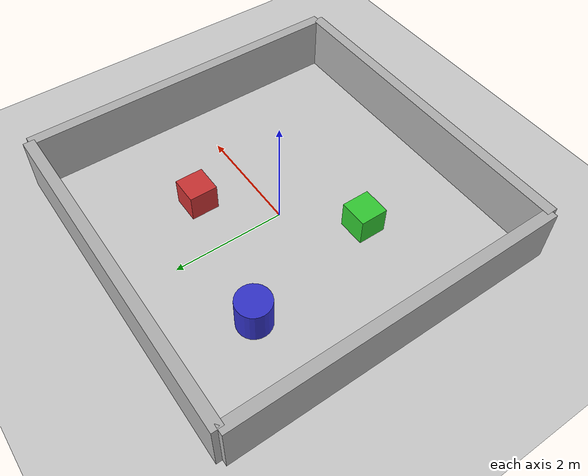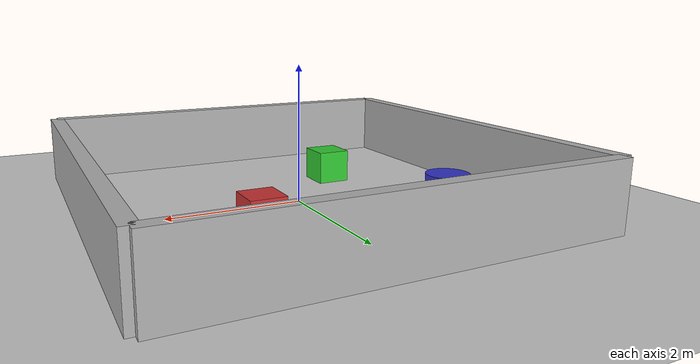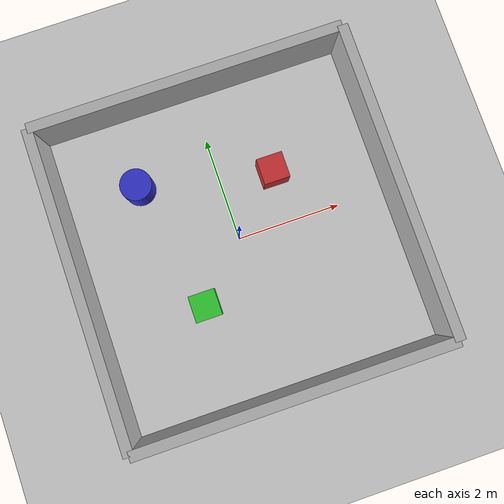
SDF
<?xml version="1.0" ?>
<sdf version="1.8">
  <world name="my_world">

    <!-- Physics Settings -->
    <physics name="1ms" type="ignored">
      <max_step_size>0.001</max_step_size>
      <real_time_factor>1.0</real_time_factor>
      <real_time_update_rate>1000</real_time_update_rate>
    </physics>

    <!-- Plugins -->
    <plugin filename="libignition-gazebo-physics-system.so"
            name="ignition::gazebo::systems::Physics">
    </plugin>

    <plugin filename="libignition-gazebo-user-commands-system.so"
            name="ignition::gazebo::systems::UserCommands">
    </plugin>

    <plugin filename="libignition-gazebo-scene-broadcaster-system.so"
            name="ignition::gazebo::systems::SceneBroadcaster">
    </plugin>

    <plugin filename="libignition-gazebo-sensors-system.so"
            name="ignition::gazebo::systems::Sensors">
      <render_engine>ogre2</render_engine>
    </plugin>

    <!-- Lighting -->
    <light type="directional" name="sun">
      <cast_shadows>true</cast_shadows>
      <pose>0 0 10 0 0 0</pose>
      <diffuse>0.8 0.8 0.8 1</diffuse>
      <specular>0.2 0.2 0.2 1</specular>
      <attenuation>
        <range>1000</range>
        <constant>0.9</constant>
        <linear>0.01</linear>
        <quadratic>0.001</quadratic>
      </attenuation>
      <direction>-0.5 0.1 -0.9</direction>
    </light>

    <!-- Ground Plane -->
    <model name="ground_plane">
      <static>true</static>
      <link name="link">
        <collision name="collision">
          <geometry>
            <plane>
              <normal>0 0 1</normal>
              <size>50 50</size>
            </plane>
          </geometry>
          <surface>
            <friction>
              <ode>
                <mu>100</mu>
                <mu2>50</mu2>
              </ode>
            </friction>
          </surface>
        </collision>
        <visual name="visual">
          <geometry>
            <plane>
              <normal>0 0 1</normal>
              <size>50 50</size>
            </plane>
          </geometry>
          <material>
            <ambient>0.8 0.8 0.8 1</ambient>
            <diffuse>0.8 0.8 0.8 1</diffuse>
            <specular>0.8 0.8 0.8 1</specular>
          </material>
        </visual>
      </link>
    </model>

    <!-- Wall 1 -->
    <model name="wall_1">
      <static>true</static>
      <pose>3 0 0.5 0 0 0</pose>
      <link name="link">
        <collision name="collision">
          <geometry>
            <box>
              <size>0.2 6 1</size>
            </box>
          </geometry>
        </collision>
        <visual name="visual">
          <geometry>
            <box>
              <size>0.2 6 1</size>
            </box>
          </geometry>
          <material>
            <ambient>0.5 0.5 0.5 1</ambient>
            <diffuse>0.7 0.7 0.7 1</diffuse>
          </material>
        </visual>
      </link>
    </model>

    <!-- Wall 2 -->
    <model name="wall_2">
      <static>true</static>
      <pose>-3 0 0.5 0 0 0</pose>
      <link name="link">
        <collision name="collision">
          <geometry>
            <box>
              <size>0.2 6 1</size>
            </box>
          </geometry>
        </collision>
        <visual name="visual">
          <geometry>
            <box>
              <size>0.2 6 1</size>
            </box>
          </geometry>
          <material>
            <ambient>0.5 0.5 0.5 1</ambient>
            <diffuse>0.7 0.7 0.7 1</diffuse>
          </material>
        </visual>
      </link>
    </model>

    <!-- Wall 3 -->
    <model name="wall_3">
      <static>true</static>
      <pose>0 3 0.5 0 0 0</pose>
      <link name="link">
        <collision name="collision">
          <geometry>
            <box>
              <size>6 0.2 1</size>
            </box>
          </geometry>
        </collision>
        <visual name="visual">
          <geometry>
            <box>
              <size>6 0.2 1</size>
            </box>
          </geometry>
          <material>
            <ambient>0.5 0.5 0.5 1</ambient>
            <diffuse>0.7 0.7 0.7 1</diffuse>
          </material>
        </visual>
      </link>
    </model>

    <!-- Wall 4 -->
    <model name="wall_4">
      <static>true</static>
      <pose>0 -3 0.5 0 0 0</pose>
      <link name="link">
        <collision name="collision">
          <geometry>
            <box>
              <size>6 0.2 1</size>
            </box>
          </geometry>
        </collision>
        <visual name="visual">
          <geometry>
            <box>
              <size>6 0.2 1</size>
            </box>
          </geometry>
          <material>
            <ambient>0.5 0.5 0.5 1</ambient>
            <diffuse>0.7 0.7 0.7 1</diffuse>
          </material>
        </visual>
      </link>
    </model>

    <!-- Obstacle Box 1 -->
    <model name="obstacle_1">
      <static>true</static>
      <pose>1 1 0.25 0 0 0</pose>
      <link name="link">
        <collision name="collision">
          <geometry>
            <box>
              <size>0.5 0.5 0.5</size>
            </box>
          </geometry>
        </collision>
        <visual name="visual">
          <geometry>
            <box>
              <size>0.5 0.5 0.5</size>
            </box>
          </geometry>
          <material>
            <ambient>0.8 0.2 0.2 1</ambient>
            <diffuse>0.8 0.2 0.2 1</diffuse>
          </material>
        </visual>
      </link>
    </model>

    <!-- Obstacle Box 2 -->
    <model name="obstacle_2">
      <static>true</static>
      <pose>-1 -1 0.25 0 0 0</pose>
      <link name="link">
        <collision name="collision">
          <geometry>
            <box>
              <size>0.5 0.5 0.5</size>
            </box>
          </geometry>
        </collision>
        <visual name="visual">
          <geometry>
            <box>
              <size>0.5 0.5 0.5</size>
            </box>
          </geometry>
          <material>
            <ambient>0.2 0.8 0.2 1</ambient>
            <diffuse>0.2 0.8 0.2 1</diffuse>
          </material>
        </visual>
      </link>
    </model>

    <!-- Obstacle Cylinder -->
    <model name="obstacle_3">
      <static>true</static>
      <pose>-1.5 1.5 0.3 0 0 0</pose>
      <link name="link">
        <collision name="collision">
          <geometry>
            <cylinder>
              <radius>0.3</radius>
              <length>0.6</length>
            </cylinder>
          </geometry>
        </collision>
        <visual name="visual">
          <geometry>
            <cylinder>
              <radius>0.3</radius>
              <length>0.6</length>
            </cylinder>
          </geometry>
          <material>
            <ambient>0.2 0.2 0.8 1</ambient>
            <diffuse>0.2 0.2 0.8 1</diffuse>
          </material>
        </visual>
      </link>
    </model>

  </world>
</sdf>
